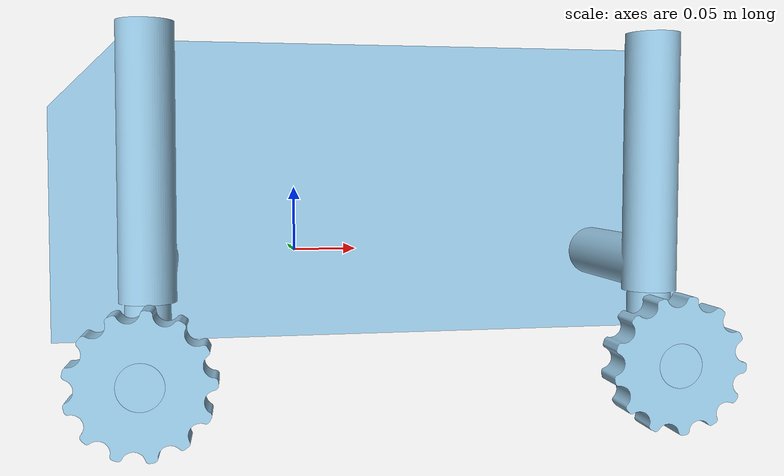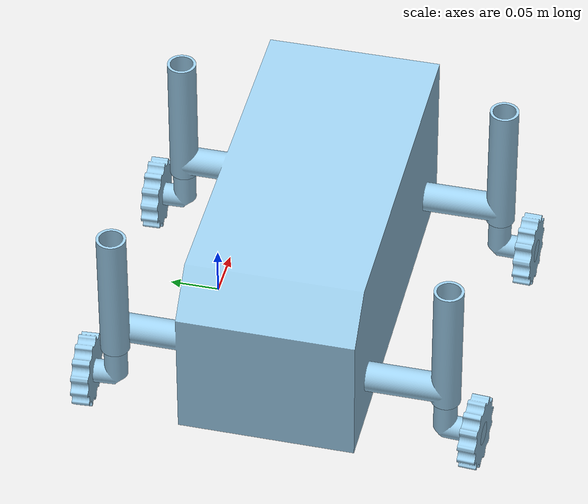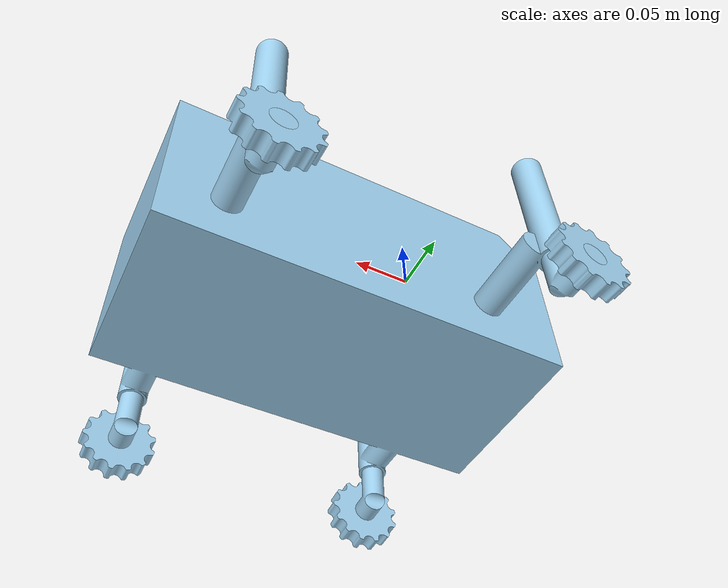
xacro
<?xml version="1.0"?>
<robot name="onshape">
  <link name="corps">
    <visual>
      <origin xyz="-0.16487494494899462838 0.00098504563636114816916 -0.036950519133039851083" rpy="0 -0 0" />
      <geometry>
        <mesh filename="file://cadstl/corps.stl"/>
      </geometry>
      <material name="corps_material">
        <color rgba="0.61568627450980395466 0.81176470588235294379 0.92941176470588238168 1.0"/>
      </material>
    </visual>
    <collision>
      <origin xyz="-0.16487494494899462838 0.00098504563636114816916 -0.036950519133039851083" rpy="0 -0 0" />
      <geometry>
        <mesh filename="file://cadstl/corps.stl"/>
      </geometry>
    </collision>
    <inertial>
      <origin xyz="0.03717597665985780675 -0.08895205340210562972 0.05181332411500932239" rpy="0 0 0"/>
      <mass value="16.448528571913374918" />
      <inertia ixx="0.095921333911981584985" ixy="1.5239950707448410568e-05" ixz="-0.0026043158442383908431" iyy="0.26122663097780685071" iyz="4.0105311590604869902e-05" izz="0.27029858095782255401" />
    </inertial>
  </link>

  <link name="support_roue">
    <visual>
      <origin xyz="0 0 0.035801747109368328714" rpy="3.141592653589793116 -0 1.0379658610783623998e-17" />
      <geometry>
        <mesh filename="file://cadstl/support_roue.stl"/>
      </geometry>
      <material name="support_roue_material">
        <color rgba="0.61568627450980395466 0.81176470588235294379 0.92941176470588238168 1.0"/>
      </material>
    </visual>
    <collision>
      <origin xyz="0 0 0.035801747109368328714" rpy="3.141592653589793116 -0 1.0379658610783623998e-17" />
      <geometry>
        <mesh filename="file://cadstl/support_roue.stl"/>
      </geometry>
    </collision>
    <inertial>
      <origin xyz="0.0069440367254396985486 5.7925533100328629342e-09 0.01072376904755515184" rpy="0 0 0"/>
      <mass value="0.062757225475031680473" />
      <inertia ixx="4.3045751619389915053e-05" ixy="1.1104401055886233416e-11" ixz="-1.1010089946407120034e-05" iyy="5.1220160514781432959e-05" iyz="2.0159996300028320446e-11" izz="1.2742885347160338148e-05" />
    </inertial>
  </link>

  <link name="roue">
    <visual>
      <origin xyz="0 0 0.017999999999999960476" rpy="3.141592653589793116 8.1540335100360869226e-18 0" />
      <geometry>
        <mesh filename="file://cadstl/roue.stl"/>
      </geometry>
      <material name="roue_material">
        <color rgba="0.61568627450980395466 0.81176470588235294379 0.92941176470588238168 1.0"/>
      </material>
    </visual>
    <collision>
      <origin xyz="0 0 0.017999999999999960476" rpy="3.141592653589793116 8.1540335100360869226e-18 0" />
      <geometry>
        <mesh filename="file://cadstl/roue.stl"/>
      </geometry>
    </collision>
    <inertial>
      <origin xyz="-1.490588268484044217e-18 8.6605835587739984788e-19 0.0089999999999999576866" rpy="0 0 0"/>
      <mass value="0.072827103715511029569" />
      <inertia ixx="2.6456818459580168276e-05" ixy="0" ixz="-4.4844901063600417426e-22" iyy="2.6456818459580151335e-05" iyz="0" izz="4.8980973318522718371e-05" />
    </inertial>
  </link>

  <joint name="wheelfrontleft" type="revolute">
    <origin xyz="0.040000000000000035527 0 0.035801747109368328714" rpy="1.570796326794896558 -0 -1.570796326794896558" />
    <parent link="support_roue" />
    <child link="roue" />
    <axis xyz="0 0 1"/>
    <limit effort="1" velocity="20" />
    <joint_properties friction="0.0"/>
  </joint>

  <joint name="supfrontleft" type="revolute">
    <origin xyz="-0.10486365344508835618 -0.25900169054203697749 -0.0019505191330399032634" rpy="3.141592653589793116 -0 -1.6350926095779627634" />
    <parent link="corps" />
    <child link="support_roue" />
    <axis xyz="0 0 1"/>
    <limit effort="1" velocity="20" />
    <joint_properties friction="0.0"/>
  </joint>

  <link name="support_roue_2">
    <visual>
      <origin xyz="0 -2.7755575615628913511e-17 0.035801747109368328714" rpy="3.141592653589793116 -0 1.8377189892559446398e-18" />
      <geometry>
        <mesh filename="file://cadstl/support_roue.stl"/>
      </geometry>
      <material name="support_roue_material">
        <color rgba="0.61568627450980395466 0.81176470588235294379 0.92941176470588238168 1.0"/>
      </material>
    </visual>
    <collision>
      <origin xyz="0 -2.7755575615628913511e-17 0.035801747109368328714" rpy="3.141592653589793116 -0 1.8377189892559446398e-18" />
      <geometry>
        <mesh filename="file://cadstl/support_roue.stl"/>
      </geometry>
    </collision>
    <inertial>
      <origin xyz="0.0069440367254396968139 5.7925532822179718512e-09 0.01072376904755515184" rpy="0 0 0"/>
      <mass value="0.062757225475031680473" />
      <inertia ixx="4.30457516193899015e-05" ixy="1.110440105570899866e-11" ixz="-1.101008994640711834e-05" iyy="5.1220160514781432959e-05" iyz="2.0159996300122367004e-11" izz="1.2742885347160338148e-05" />
    </inertial>
  </link>

  <link name="roue_2">
    <visual>
      <origin xyz="0 0 -0.018000000000000015987" rpy="2.5242800315414714867e-18 -4.1786896273659949387e-19 -5.5878178144470137785e-18" />
      <geometry>
        <mesh filename="file://cadstl/roue.stl"/>
      </geometry>
      <material name="roue_material">
        <color rgba="0.61568627450980395466 0.81176470588235294379 0.92941176470588238168 1.0"/>
      </material>
    </visual>
    <collision>
      <origin xyz="0 0 -0.018000000000000015987" rpy="2.5242800315414714867e-18 -4.1786896273659949387e-19 -5.5878178144470137785e-18" />
      <geometry>
        <mesh filename="file://cadstl/roue.stl"/>
      </geometry>
    </collision>
    <inertial>
      <origin xyz="-1.5230494864408887106e-18 -8.7757107739162758437e-19 -0.0090000000000000131978" rpy="0 0 0"/>
      <mass value="0.072827103715511029569" />
      <inertia ixx="2.6456818459580154723e-05" ixy="-3.2301060950170305094e-21" ixz="6.7110037342331918919e-23" iyy="2.6456818459580151335e-05" iyz="4.1283846120836476691e-24" izz="4.8980973318522718371e-05" />
    </inertial>
  </link>

  <joint name="wheelbackleft" type="revolute">
    <origin xyz="0.040000000000000035527 0 0.035801747109368328714" rpy="-1.570796326794896558 -1.0466347978309025191 -1.570796326794896558" />
    <parent link="support_roue_2" />
    <child link="roue_2" />
    <axis xyz="0 0 1"/>
    <limit effort="1" velocity="20" />
    <joint_properties friction="0.0"/>
  </joint>

  <joint name="supbackleft" type="revolute">
    <origin xyz="0.17511376354709917713 -0.259001690542037033 -0.0019505191330399032634" rpy="3.141592653589793116 -0 -1.5986454079556713381" />
    <parent link="corps" />
    <child link="support_roue_2" />
    <axis xyz="0 0 1"/>
    <limit effort="1" velocity="20" />
    <joint_properties friction="0.0"/>
  </joint>

  <link name="support_roue_3">
    <visual>
      <origin xyz="0 0 0.035801747109368328714" rpy="3.141592653589793116 -0 3.985001973689215218e-19" />
      <geometry>
        <mesh filename="file://cadstl/support_roue.stl"/>
      </geometry>
      <material name="support_roue_material">
        <color rgba="0.61568627450980395466 0.81176470588235294379 0.92941176470588238168 1.0"/>
      </material>
    </visual>
    <collision>
      <origin xyz="0 0 0.035801747109368328714" rpy="3.141592653589793116 -0 3.985001973689215218e-19" />
      <geometry>
        <mesh filename="file://cadstl/support_roue.stl"/>
      </geometry>
    </collision>
    <inertial>
      <origin xyz="0.0069440367254396968139 5.7925533099635534706e-09 0.01072376904755515184" rpy="0 0 0"/>
      <mass value="0.062757225475031680473" />
      <inertia ixx="4.30457516193899015e-05" ixy="1.1104401055527497139e-11" ixz="-1.101008994640711834e-05" iyy="5.1220160514781432959e-05" iyz="2.0159996300138212683e-11" izz="1.2742885347160338148e-05" />
    </inertial>
  </link>

  <link name="roue_3">
    <visual>
      <origin xyz="0 1.3877787807814456755e-17 0.018000000000000002109" rpy="-3.141592653589793116 2.6771850920217469288e-18 3.0984265678640010969e-17" />
      <geometry>
        <mesh filename="file://cadstl/roue.stl"/>
      </geometry>
      <material name="roue_material">
        <color rgba="0.61568627450980395466 0.81176470588235294379 0.92941176470588238168 1.0"/>
      </material>
    </visual>
    <collision>
      <origin xyz="0 1.3877787807814456755e-17 0.018000000000000002109" rpy="-3.141592653589793116 2.6771850920217469288e-18 3.0984265678640010969e-17" />
      <geometry>
        <mesh filename="file://cadstl/roue.stl"/>
     </geometry>
    </collision>
    <inertial>
      <origin xyz="-1.4715680269283765135e-18 1.4740161447828721662e-17 0.00899999999999999932" rpy="0 0 0"/>
      <mass value="0.072827103715511029569" />
      <inertia ixx="2.6456818459580154723e-05" ixy="1.0844919925150115207e-21" ixz="-4.0706346454884945295e-22" iyy="2.6456818459580151335e-05" iyz="8.0445128214762992534e-23" izz="4.8980973318522718371e-05" />
    </inertial>
  </link>

  <joint name="wheelbackright" type="revolute">
    <origin xyz="0.040000000000000007772 8.3266726846886740532e-17 0.035801747109368328714" rpy="-1.570796326794896558 0.51776836171346907189 1.5707963267948970021" />
    <parent link="support_roue_3" />
    <child link="roue_3" />
    <axis xyz="0 0 1"/>
    <limit effort="1" velocity="20" />
    <joint_properties friction="0.0"/>
  </joint>

  <joint name="supbackright" type="revolute">
    <origin xyz="0.17511376354709914938 0.080971781814759308249 -0.0019505191330399032634" rpy="3.141592653589793116 -0 1.6025660734294633336" />
    <parent link="corps" />
    <child link="support_roue_3" />
    <axis xyz="0 0 1"/>
    <limit effort="1" velocity="20" />
    <joint_properties friction="0.0"/>
  </joint>

  <link name="support_roue_4">
    <visual>
      <origin xyz="0 1.3877787807814456755e-17 0.035801747109368328714" rpy="3.141592653589793116 -0 8.6963759104196122014e-18" />
      <geometry>
        <mesh filename="file://cadstl/support_roue.stl"/>
      </geometry>
      <material name="support_roue_material">
        <color rgba="0.61568627450980395466 0.81176470588235294379 0.92941176470588238168 1.0"/>
      </material>
    </visual>
    <collision>
      <origin xyz="0 1.3877787807814456755e-17 0.035801747109368328714" rpy="3.141592653589793116 -0 8.6963759104196122014e-18" />
      <geometry>
        <mesh filename="file://cadstl/support_roue.stl"/>
      </geometry>
    </collision>
    <inertial>
      <origin xyz="0.0069440367254396985486 5.7925533238989618528e-09 0.01072376904755515184" rpy="0 0 0"/>
      <mass value="0.062757225475031680473" />
      <inertia ixx="4.3045751619389915053e-05" ixy="1.1104401056015343061e-11" ixz="-1.1010089946407120034e-05" iyy="5.1220160514781419407e-05" iyz="2.015999630004685123e-11" izz="1.2742885347160338148e-05" />
    </inertial>
  </link>

  <link name="roue_4">
    <visual>
      <origin xyz="0 0 0.018000000000000015987" rpy="3.141592653589793116 -2.8063591805892701907e-20 3.8063495312512622149e-19" />
      <geometry>
        <mesh filename="file://cadstl/roue.stl"/>
      </geometry>
      <material name="roue_material">
        <color rgba="0.61568627450980395466 0.81176470588235294379 0.92941176470588238168 1.0"/>
      </material>
    </visual>
    <collision>
      <origin xyz="0 0 0.018000000000000015987" rpy="3.141592653589793116 -2.8063591805892701907e-20 3.8063495312512622149e-19" />
      <geometry>
        <mesh filename="file://cadstl/roue.stl"/>
      </geometry>
    </collision>
    <inertial>
      <origin xyz="-1.5350936370502411499e-18 8.8237584115536215772e-19 0.0090000000000000131978" rpy="0 0 0"/>
      <mass value="0.072827103715511029569" />
      <inertia ixx="2.6456818459580147947e-05" ixy="2.504680858454557762e-22" ixz="1.0236165925189605861e-23" iyy="2.6456818459580151335e-05" iyz="-1.5471163563363809455e-22" izz="4.8980973318522718371e-05" />
    </inertial>
  </link>

  <joint name="wheelfrontright" type="revolute">
    <origin xyz="0.03999999999999995226 2.7755575615628913511e-17 0.035801747109368328714" rpy="1.570796326794896558 -1.5268183480501129612 -1.5707963267948970021" />
    <parent link="support_roue_4" />
    <child link="roue_4" />
    <axis xyz="0 0 1"/>
    <limit effort="1" velocity="20" />
    <joint_properties friction="0.0"/>
  </joint>

  <joint name="supfrontright" type="revolute">
    <origin xyz="-0.10486365344508835618 0.080971781814759252738 -0.0019505191330399032634" rpy="3.141592653589793116 -0 1.6345399515772143229" />
    <parent link="corps" />
    <child link="support_roue_4" />
    <axis xyz="0 0 1"/>
    <limit effort="1" velocity="20" />
    <joint_properties friction="0.0"/>
  </joint>

  <link name="dummy_link">
    <inertial>
      <mass value="0.0001"/> <!-- A very small mass to avoid numerical instability -->
      <origin xyz="0 0 0"/>
      <inertia ixx="0.0001" ixy="0" ixz="0" iyy="0.0001" iyz="0" izz="0.0001"/>
    </inertial>
  </link>

  <joint name="dummy_joint" type="fixed">
    <parent link="dummy_link"/>
    <child link="corps"/>
    <origin xyz="0 0 0"/>
  </joint>

</robot>
